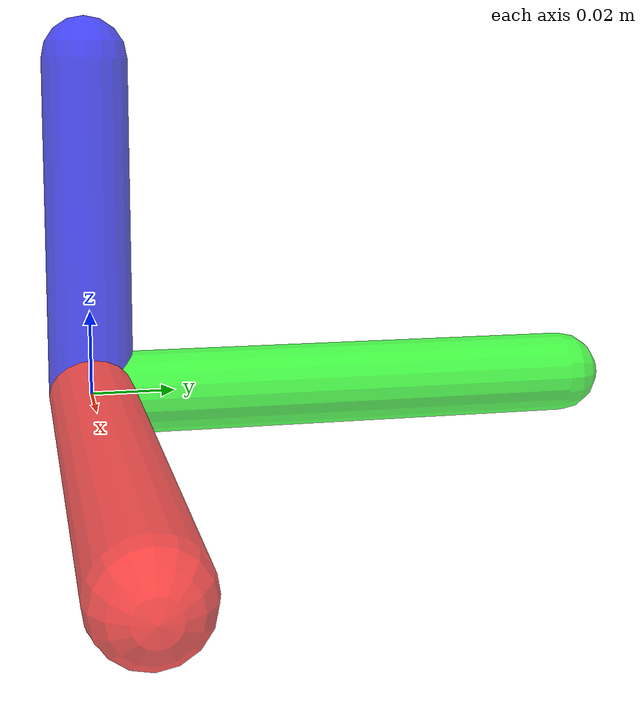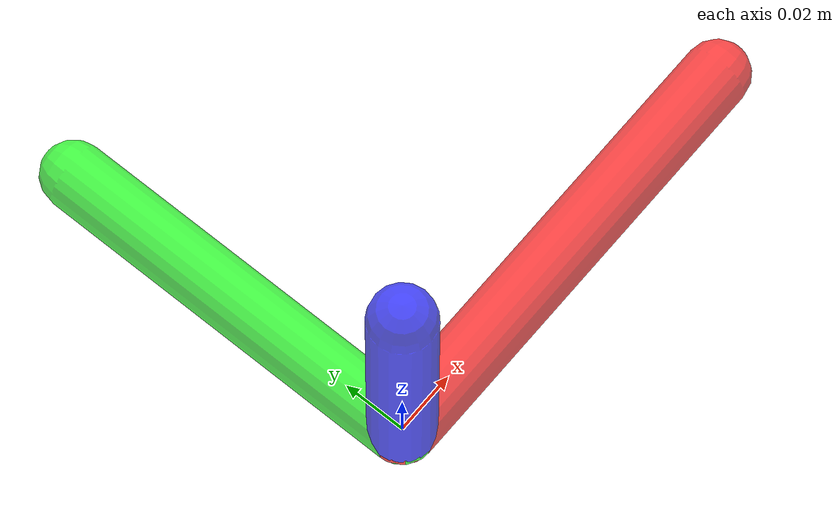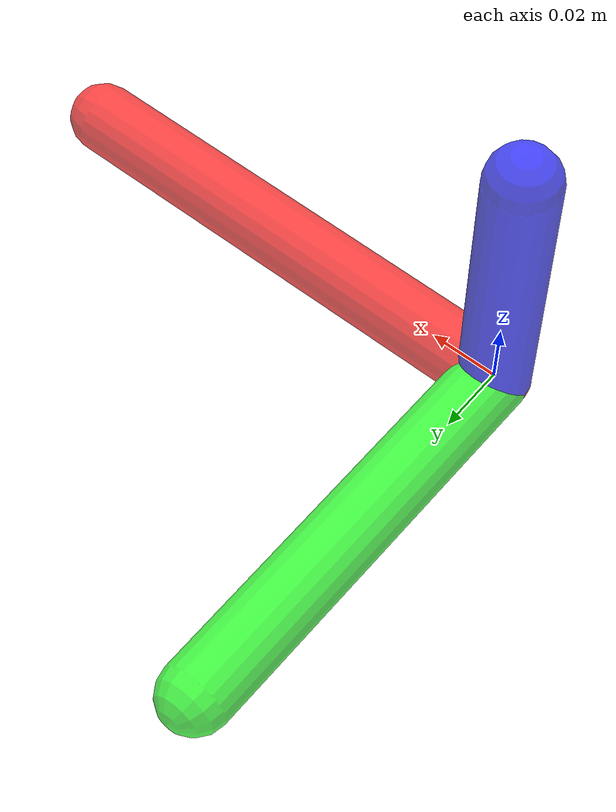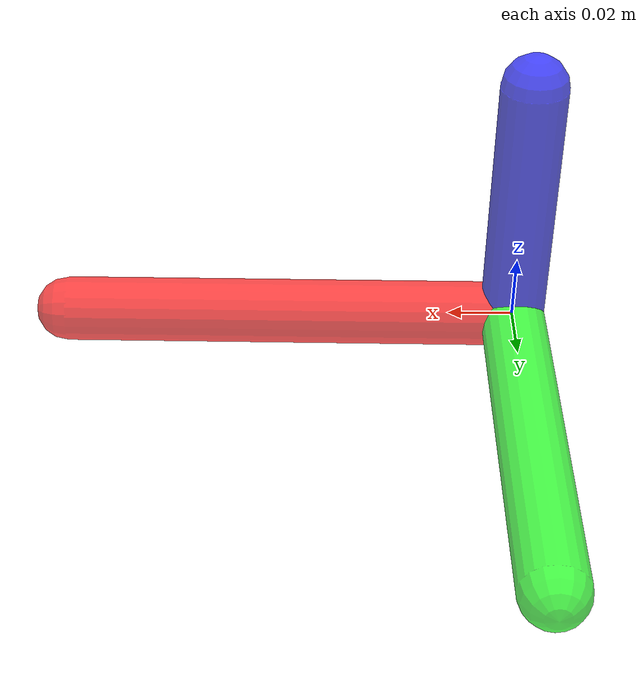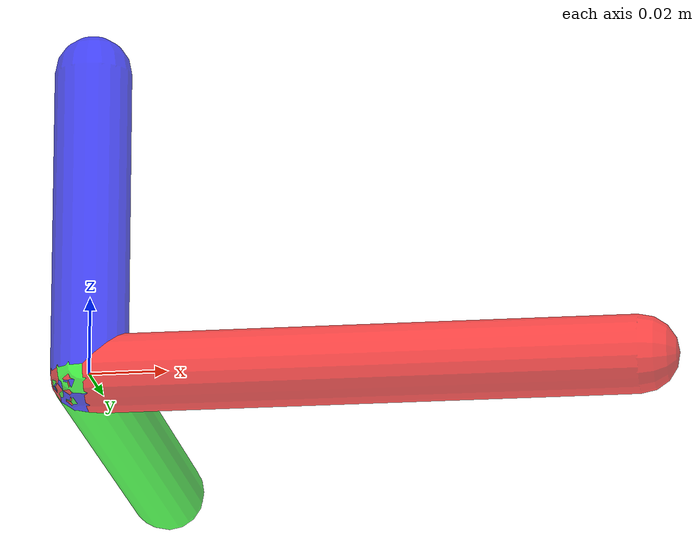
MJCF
<mujoco>
<worldbody>
  <body name="cursor" pos="0 0 0">
    <geom name="x_axis" type="capsule" size="0.01 0.25" fromto="0 0 0  0.14 0 0" rgba="1 0 0 0.7"/>
    <geom name="y_axis" type="capsule" size="0.01 0.25" fromto="0 0 0  0 0.12 0" rgba="0 1 0 0.7"/>
    <geom name="z_axis" type="capsule" size="0.01 0.25" fromto="0 0 0  0 0 0.08" rgba="0 0 1 0.7"/>
  </body>
</worldbody>
</mujoco>
